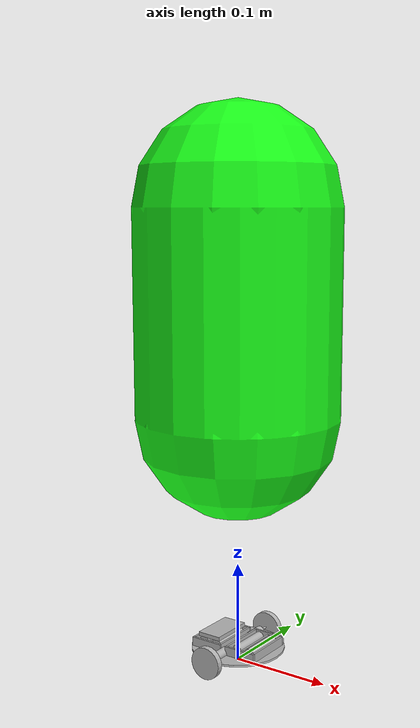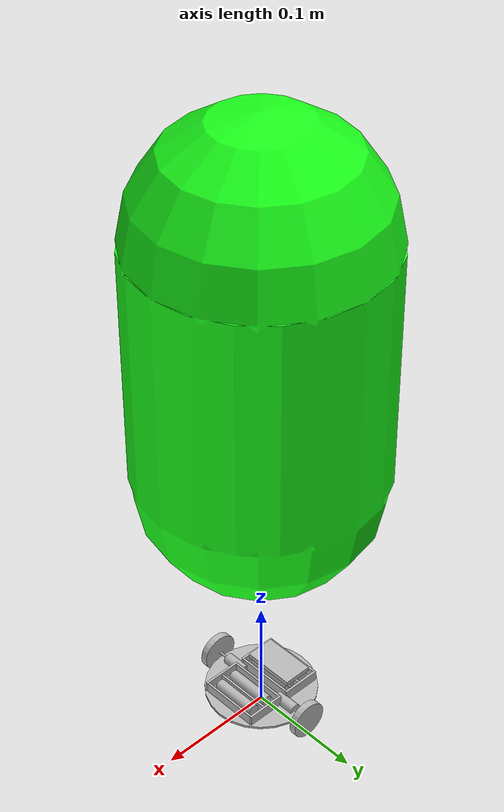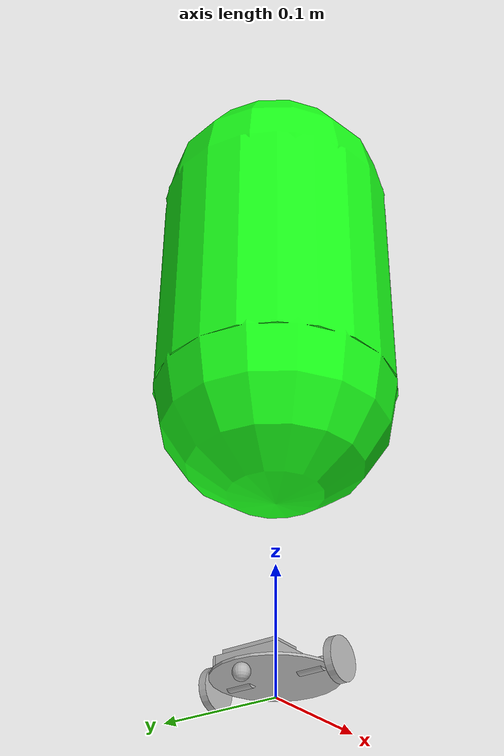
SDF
<?xml version="1.0"?>
<sdf version="1.11">
	<model name="green_runner_robot">
		<static>0</static>
		<pose>0 0 0 0 0 0</pose>
		<!-- LINKS - LINKS - LINKS -->
		<link name="blade_link">
			<pose>0 0 0.013 0 0 0</pose>
			<inertial>
				<mass>0.005</mass>
				<pose>0 0 0.001 0 0 0</pose>
				<inertia>
					<ixx>2.92e-06</ixx>
					<ixy>0</ixy>
					<ixz>0</ixz>
					<iyy>2.92e-06</iyy>
					<iyz>0</iyz>
					<izz>5.52e-06</izz>
				</inertia>
			</inertial>
			<self_collide>0</self_collide>
			<enable_wind>0</enable_wind>
			<kinematic>0</kinematic>
			<gravity>1</gravity>
			<visual name="body_visual">
				<pose>0 0 0.001 0 0 0</pose>
				<geometry>
					<cylinder>
						<radius>0.047</radius>
						<length>0.002</length>
					</cylinder>
				</geometry>
				<transparency>0</transparency>
				<cast_shadows>1</cast_shadows>
			</visual>
		</link>
		<link name="battery_b_lr_link">
			<pose>-0.0275 0.02 0.02 1.570796 0 0</pose>
			<inertial>
				<mass>0.00756</mass>
				<pose>0 0 0.02 0 0 0</pose>
				<inertia>
					<ixx>1.06e-06</ixx>
					<ixy>0</ixy>
					<ixz>0</ixz>
					<iyy>1.06e-06</iyy>
					<iyz>0</iyz>
					<izz>9.5e-08</izz>
				</inertia>
			</inertial>
			<self_collide>0</self_collide>
			<enable_wind>0</enable_wind>
			<kinematic>0</kinematic>
			<gravity>1</gravity>
			<visual name="body_visual">
				<pose>0 0 0.02 0 0 0</pose>
				<geometry>
					<cylinder>
						<radius>0.005</radius>
						<length>0.04</length>
					</cylinder>
				</geometry>
				<transparency>0</transparency>
				<cast_shadows>1</cast_shadows>
			</visual>
			<visual name="head_visual">
				<pose>0 0 0.041 0 0 0</pose>
				<geometry>
					<cylinder>
						<radius>0.001</radius>
						<length>0.002</length>
					</cylinder>
				</geometry>
				<transparency>0</transparency>
				<cast_shadows>1</cast_shadows>
			</visual>
		</link>
		<link name="battery_b_rl_link">
			<pose>-0.0125 -0.02 0.02 -1.570796 0 0</pose>
			<inertial>
				<mass>0.00756</mass>
				<pose>0 0 0.02 0 0 0</pose>
				<inertia>
					<ixx>1.06e-06</ixx>
					<ixy>0</ixy>
					<ixz>0</ixz>
					<iyy>1.06e-06</iyy>
					<iyz>0</iyz>
					<izz>9.5e-08</izz>
				</inertia>
			</inertial>
			<self_collide>0</self_collide>
			<enable_wind>0</enable_wind>
			<kinematic>0</kinematic>
			<gravity>1</gravity>
			<visual name="body_visual">
				<pose>0 0 0.02 0 0 0</pose>
				<geometry>
					<cylinder>
						<radius>0.005</radius>
						<length>0.04</length>
					</cylinder>
				</geometry>
				<transparency>0</transparency>
				<cast_shadows>1</cast_shadows>
			</visual>
			<visual name="head_visual">
				<pose>0 0 0.041 0 0 0</pose>
				<geometry>
					<cylinder>
						<radius>0.001</radius>
						<length>0.002</length>
					</cylinder>
				</geometry>
				<transparency>0</transparency>
				<cast_shadows>1</cast_shadows>
			</visual>
		</link>
		<link name="box_b_link">
			<pose>-0.02 0 0.014 0 0 1.570796</pose>
			<inertial>
				<mass>0.00101</mass>
				<pose>0 0 0.005 0 0 0</pose>
				<inertia>
					<ixx>1.06e-07</ixx>
					<ixy>0</ixy>
					<ixz>0</ixz>
					<iyy>2.19e-07</iyy>
					<iyz>0</iyz>
					<izz>3.08e-07</izz>
				</inertia>
			</inertial>
			<self_collide>0</self_collide>
			<enable_wind>0</enable_wind>
			<kinematic>0</kinematic>
			<gravity>1</gravity>
			<visual name="front_visual">
				<pose>0 0.016 0.005 0 0 0</pose>
				<geometry>
					<box>
						<size>0.05 0.002 0.01</size>
					</box>
				</geometry>
				<transparency>0</transparency>
				<cast_shadows>1</cast_shadows>
			</visual>
			<visual name="back_visual">
				<pose>0 -0.016 0.005 0 0 0</pose>
				<geometry>
					<box>
						<size>0.05 0.002 0.01</size>
					</box>
				</geometry>
				<transparency>0</transparency>
				<cast_shadows>1</cast_shadows>
			</visual>
			<visual name="bottom_visual">
				<pose>0 0 0.001 0 0 0</pose>
				<geometry>
					<box>
						<size>0.05 0.03 0.002</size>
					</box>
				</geometry>
				<transparency>0</transparency>
				<cast_shadows>1</cast_shadows>
			</visual>
			<visual name="left_visual">
				<pose>-0.026 0 0.005 0 0 0</pose>
				<geometry>
					<box>
						<size>0.002 0.034 0.01</size>
					</box>
				</geometry>
				<transparency>0</transparency>
				<cast_shadows>1</cast_shadows>
			</visual>
			<visual name="middle_visual">
				<pose>0 0 0.005 0 0 0</pose>
				<geometry>
					<box>
						<size>0.05 0.002 0.006</size>
					</box>
				</geometry>
				<transparency>0</transparency>
				<cast_shadows>1</cast_shadows>
			</visual>
			<visual name="right_visual">
				<pose>0.026 0 0.005 0 0 0</pose>
				<geometry>
					<box>
						<size>0.002 0.034 0.01</size>
					</box>
				</geometry>
				<transparency>0</transparency>
				<cast_shadows>1</cast_shadows>
			</visual>
		</link>
		<link name="battery_f_lr_link">
			<pose>0.0275 0.02 0.02 1.570796 0 0</pose>
			<inertial>
				<mass>0.00756</mass>
				<pose>0 0 0.02 0 0 0</pose>
				<inertia>
					<ixx>1.06e-06</ixx>
					<ixy>0</ixy>
					<ixz>0</ixz>
					<iyy>1.06e-06</iyy>
					<iyz>0</iyz>
					<izz>9.5e-08</izz>
				</inertia>
			</inertial>
			<self_collide>0</self_collide>
			<enable_wind>0</enable_wind>
			<kinematic>0</kinematic>
			<gravity>1</gravity>
			<visual name="body_visual">
				<pose>0 0 0.02 0 0 0</pose>
				<geometry>
					<cylinder>
						<radius>0.005</radius>
						<length>0.04</length>
					</cylinder>
				</geometry>
				<transparency>0</transparency>
				<cast_shadows>1</cast_shadows>
			</visual>
			<visual name="head_visual">
				<pose>0 0 0.041 0 0 0</pose>
				<geometry>
					<cylinder>
						<radius>0.001</radius>
						<length>0.002</length>
					</cylinder>
				</geometry>
				<transparency>0</transparency>
				<cast_shadows>1</cast_shadows>
			</visual>
		</link>
		<link name="battery_f_rl_link">
			<pose>0.0125 -0.02 0.02 -1.570796 0 0</pose>
			<inertial>
				<mass>0.00756</mass>
				<pose>0 0 0.02 0 0 0</pose>
				<inertia>
					<ixx>1.06e-06</ixx>
					<ixy>0</ixy>
					<ixz>0</ixz>
					<iyy>1.06e-06</iyy>
					<iyz>0</iyz>
					<izz>9.5e-08</izz>
				</inertia>
			</inertial>
			<self_collide>0</self_collide>
			<enable_wind>0</enable_wind>
			<kinematic>0</kinematic>
			<gravity>1</gravity>
			<visual name="body_visual">
				<pose>0 0 0.02 0 0 0</pose>
				<geometry>
					<cylinder>
						<radius>0.005</radius>
						<length>0.04</length>
					</cylinder>
				</geometry>
				<transparency>0</transparency>
				<cast_shadows>1</cast_shadows>
			</visual>
			<visual name="head_visual">
				<pose>0 0 0.041 0 0 0</pose>
				<geometry>
					<cylinder>
						<radius>0.001</radius>
						<length>0.002</length>
					</cylinder>
				</geometry>
				<transparency>0</transparency>
				<cast_shadows>1</cast_shadows>
			</visual>
		</link>
		<link name="box_f_link">
			<pose>0.02 0 0.014 0 0 -1.570796</pose>
			<inertial>
				<mass>0.00101</mass>
				<pose>0 0 0.005 0 0 0</pose>
				<inertia>
					<ixx>1.06e-07</ixx>
					<ixy>0</ixy>
					<ixz>0</ixz>
					<iyy>2.19e-07</iyy>
					<iyz>0</iyz>
					<izz>3.08e-07</izz>
				</inertia>
			</inertial>
			<self_collide>0</self_collide>
			<enable_wind>0</enable_wind>
			<kinematic>0</kinematic>
			<gravity>1</gravity>
			<visual name="right_visual">
				<pose>0.026 0 0.005 0 0 0</pose>
				<geometry>
					<box>
						<size>0.002 0.034 0.01</size>
					</box>
				</geometry>
				<transparency>0</transparency>
				<cast_shadows>1</cast_shadows>
			</visual>
			<visual name="front_visual">
				<pose>0 0.016 0.005 0 0 0</pose>
				<geometry>
					<box>
						<size>0.05 0.002 0.01</size>
					</box>
				</geometry>
				<transparency>0</transparency>
				<cast_shadows>1</cast_shadows>
			</visual>
			<visual name="bottom_visual">
				<pose>0 0 0.001 0 0 0</pose>
				<geometry>
					<box>
						<size>0.05 0.03 0.002</size>
					</box>
				</geometry>
				<transparency>0</transparency>
				<cast_shadows>1</cast_shadows>
			</visual>
			<visual name="middle_visual">
				<pose>0 0 0.005 0 0 0</pose>
				<geometry>
					<box>
						<size>0.05 0.002 0.006</size>
					</box>
				</geometry>
				<transparency>0</transparency>
				<cast_shadows>1</cast_shadows>
			</visual>
			<visual name="left_visual">
				<pose>-0.026 0 0.005 0 0 0</pose>
				<geometry>
					<box>
						<size>0.002 0.034 0.01</size>
					</box>
				</geometry>
				<transparency>0</transparency>
				<cast_shadows>1</cast_shadows>
			</visual>
			<visual name="back_visual">
				<pose>0 -0.016 0.005 0 0 0</pose>
				<geometry>
					<box>
						<size>0.05 0.002 0.01</size>
					</box>
				</geometry>
				<transparency>0</transparency>
				<cast_shadows>1</cast_shadows>
			</visual>
		</link>
		<link name="caster_link">
			<pose>-0.04 0 0 0 0 0</pose>
			<inertial>
				<mass>0.00144</mass>
				<pose>0 0 0.0065 0 0 0</pose>
				<inertia>
					<ixx>2.4e-08</ixx>
					<ixy>0</ixy>
					<ixz>0</ixz>
					<iyy>2.4e-08</iyy>
					<iyz>0</iyz>
					<izz>2.4e-08</izz>
				</inertia>
			</inertial>
			<self_collide>0</self_collide>
			<enable_wind>0</enable_wind>
			<kinematic>0</kinematic>
			<gravity>1</gravity>
			<visual name="body_visual">
				<pose>0 0 0.0065 0 0 0</pose>
				<geometry>
					<sphere>
						<radius>0.0065</radius>
					</sphere>
				</geometry>
				<transparency>0</transparency>
				<cast_shadows>1</cast_shadows>
			</visual>
			<collision name="body_collision">
				<laser_retro>0</laser_retro>
				<max_contacts>10</max_contacts>
				<pose>0 0 0.0065 0 0 0</pose>
				<geometry>
					<sphere>
						<radius>0.0065</radius>
					</sphere>
				</geometry>
				<surface>
					<friction>
						<ode>
							<mu>1</mu>
							<mu2>0.5</mu2>
							<fdir1>0 0 0</fdir1>
							<slip1>0</slip1>
							<slip2>0</slip2>
						</ode>
						<torsional>
							<coefficient>0.75</coefficient>
							<use_patch_radius>0</use_patch_radius>
							<surface_radius>0.0065</surface_radius>
							<ode>
								<slip>0</slip>
							</ode>
						</torsional>
					</friction>
					<contact>
						<ode>
							<soft_cfm>0</soft_cfm>
							<soft_erp>0.2</soft_erp>
							<kp>1e+13</kp>
							<kd>1</kd>
							<max_vel>1</max_vel>
							<min_depth>0.001</min_depth>
						</ode>
					</contact>
				</surface>
			</collision>
		</link>
		<link name="wheel_l_link">
			<pose>0 -0.05 0.016 1.570796 0 0</pose>
			<inertial>
				<mass>0.00311</mass>
				<pose>0 0 0.003 0 0 0</pose>
				<inertia>
					<ixx>2.08e-07</ixx>
					<ixy>0</ixy>
					<ixz>0</ixz>
					<iyy>2.08e-07</iyy>
					<iyz>0</iyz>
					<izz>3.98e-07</izz>
				</inertia>
			</inertial>
			<self_collide>0</self_collide>
			<enable_wind>0</enable_wind>
			<kinematic>0</kinematic>
			<gravity>1</gravity>
			<visual name="body_visual">
				<pose>0 0 0.003 0 0 0</pose>
				<geometry>
					<cylinder>
						<radius>0.016</radius>
						<length>0.006</length>
					</cylinder>
				</geometry>
				<transparency>0</transparency>
				<cast_shadows>1</cast_shadows>
			</visual>
			<collision name="body_collision">
				<laser_retro>0</laser_retro>
				<max_contacts>10</max_contacts>
				<pose>0 0 0.003 0 0 0</pose>
				<geometry>
					<cylinder>
						<radius>0.016</radius>
						<length>0.006</length>
					</cylinder>
				</geometry>
				<surface>
					<friction>
						<ode>
							<mu>20000000</mu>
							<mu2>10000000</mu2>
							<slip1>0</slip1>
							<slip2>0</slip2>
						</ode>
						<torsional>
							<coefficient>15</coefficient>
							<use_patch_radius>0</use_patch_radius>
							<surface_radius>0.016</surface_radius>
							<ode>
								<slip>0</slip>
							</ode>
						</torsional>
					</friction>
					<contact>
						<ode>
							<soft_cfm>0</soft_cfm>
							<soft_erp>0.2</soft_erp>
							<kp>1e+13</kp>
							<kd>1</kd>
							<max_vel>1</max_vel>
							<min_depth>0.001</min_depth>
						</ode>
					</contact>
				</surface>
			</collision>
		</link>
		<link name="motor_l_link">
			<pose>0 -0.02 0.016 1.570796 0 0</pose>
			<inertial>
				<mass>0.03158</mass>
				<pose>0 0 0.01 0 0 0</pose>
				<inertia>
					<ixx>1.25e-06</ixx>
					<ixy>0</ixy>
					<ixz>0</ixz>
					<iyy>1.25e-06</iyy>
					<iyz>0</iyz>
					<izz>3.95e-07</izz>
				</inertia>
			</inertial>
			<self_collide>0</self_collide>
			<enable_wind>0</enable_wind>
			<kinematic>0</kinematic>
			<gravity>1</gravity>
			<visual name="body_visual">
				<pose>0 0 0.01 0 0 0</pose>
				<geometry>
					<cylinder>
						<radius>0.005</radius>
						<length>0.02</length>
					</cylinder>
				</geometry>
				<transparency>0</transparency>
				<cast_shadows>1</cast_shadows>
			</visual>
			<visual name="axis_visual">
				<pose>0 0 0.025 0 0 0</pose>
				<geometry>
					<cylinder>
						<radius>0.001</radius>
						<length>0.01</length>
					</cylinder>
				</geometry>
				<transparency>0</transparency>
				<cast_shadows>1</cast_shadows>
			</visual>
		</link>
		<link name="wheel_r_link">
			<pose>0 0.05 0.016 -1.570796 0 0</pose>
			<inertial>
				<mass>0.00311</mass>
				<pose>0 0 0.003 0 0 0</pose>
				<inertia>
					<ixx>2.08e-07</ixx>
					<ixy>0</ixy>
					<ixz>0</ixz>
					<iyy>2.08e-07</iyy>
					<iyz>0</iyz>
					<izz>3.98e-07</izz>
				</inertia>
			</inertial>
			<self_collide>0</self_collide>
			<enable_wind>0</enable_wind>
			<kinematic>0</kinematic>
			<gravity>1</gravity>
			<visual name="body_visual">
				<pose>0 0 0.003 0 0 0</pose>
				<geometry>
					<cylinder>
						<radius>0.016</radius>
						<length>0.006</length>
					</cylinder>
				</geometry>
				<transparency>0</transparency>
				<cast_shadows>1</cast_shadows>
			</visual>
			<collision name="body_collision">
				<laser_retro>0</laser_retro>
				<max_contacts>10</max_contacts>
				<pose>0 0 0.003 0 0 0</pose>
				<geometry>
					<cylinder>
						<radius>0.016</radius>
						<length>0.006</length>
					</cylinder>
				</geometry>
				<surface>
					<friction>
						<ode>
							<mu>2000000</mu>
							<mu2>1000000</mu2>
							<slip1>0</slip1>
							<slip2>0</slip2>
						</ode>
						<torsional>
							<coefficient>15</coefficient>
							<use_patch_radius>0</use_patch_radius>
							<surface_radius>0.016</surface_radius>
							<ode>
								<slip>0</slip>
							</ode>
						</torsional>
					</friction>
					<contact>
						<ode>
							<soft_cfm>0</soft_cfm>
							<soft_erp>0.2</soft_erp>
							<kp>1e+13</kp>
							<kd>1</kd>
							<max_vel>1</max_vel>
							<min_depth>0.001</min_depth>
						</ode>
					</contact>
				</surface>
			</collision>
		</link>
		<link name="motor_r_link">
			<pose>0 0.02 0.016 -1.570796 0 0</pose>
			<inertial>
				<mass>0.03158</mass>
				<pose>0 0 0.01 0 0 0</pose>
				<inertia>
					<ixx>1.25e-06</ixx>
					<ixy>0</ixy>
					<ixz>0</ixz>
					<iyy>1.25e-06</iyy>
					<iyz>0</iyz>
					<izz>3.95e-07</izz>
				</inertia>
			</inertial>
			<self_collide>0</self_collide>
			<enable_wind>0</enable_wind>
			<kinematic>0</kinematic>
			<gravity>1</gravity>
			<visual name="body_visual">
				<pose>0 0 0.01 0 0 0</pose>
				<geometry>
					<cylinder>
						<radius>0.005</radius>
						<length>0.02</length>
					</cylinder>
				</geometry>
				<transparency>0</transparency>
				<cast_shadows>1</cast_shadows>
			</visual>
			<visual name="axis_visual">
				<pose>0 0 0.025 0 0 0</pose>
				<geometry>
					<cylinder>
						<radius>0.001</radius>
						<length>0.01</length>
					</cylinder>
				</geometry>
				<transparency>0</transparency>
				<cast_shadows>1</cast_shadows>
			</visual>
		</link>
		<link name="display_link">
			<pose>-0.02 0 0.025 0 0 1.570796</pose>
			<inertial>
				<mass>0.01164</mass>
				<pose>0 0 0.002 0 0 0</pose>
				<inertia>
					<ixx>6.22e-07</ixx>
					<ixy>0</ixy>
					<ixz>0</ixz>
					<iyy>1.98e-06</iyy>
					<iyz>0</iyz>
					<izz>2.57e-06</izz>
				</inertia>
			</inertial>
			<self_collide>0</self_collide>
			<enable_wind>0</enable_wind>
			<kinematic>0</kinematic>
			<gravity>1</gravity>
			<visual name="body_visual">
				<pose>0 0 0.002 0 0 0</pose>
				<geometry>
					<box>
						<size>0.045 0.025 0.004</size>
					</box>
				</geometry>
				<transparency>0</transparency>
				<cast_shadows>1</cast_shadows>
			</visual>
		</link>
		<link name="visual_object_link">
			<pose>0 0 0.35 0 0 0</pose>
			<kinematic>true</kinematic>
			<inertial>
				<mass>1e-12</mass>
				<inertia>
					<ixx>0</ixx>
					<ixy>0</ixy>
					<ixz>0</ixz>
					<iyy>0</iyy>
					<iyz>0</iyz>
					<izz>0</izz>
				</inertia>
			</inertial>
			<visual name="green_capsule">
				<pose>0 0 0 0 0 0</pose>
				<geometry>
					<capsule>
						<radius>0.1</radius>
						<length>0.2</length>
					</capsule>
				</geometry>
				<material>
					<ambient>0.1 1.0 0.1 1</ambient>
					<diffuse>0.1 1.0 0.1 1</diffuse>
				</material>
			</visual>
		</link>

		<!-- JOINTS - JOINTS - JOINTS -->
		<joint name="battery_b_lr_joint" type="fixed">
			<parent>box_b_link</parent>
			<child>battery_b_lr_link</child>
			<pose>0 0 0 0 0 0</pose>
			<physics>
				<ode>
					<limit>
						<cfm>0</cfm>
						<erp>0.2</erp>
					</limit>
					<suspension>
						<cfm>0</cfm>
						<erp>0.2</erp>
					</suspension>
				</ode>
			</physics>
		</joint>
		<joint name="battery_b_rl_joint" type="fixed">
			<parent>box_b_link</parent>
			<child>battery_b_rl_link</child>
			<pose>0 0 0 0 0 0</pose>
			<physics>
				<ode>
					<limit>
						<cfm>0</cfm>
						<erp>0.2</erp>
					</limit>
					<suspension>
						<cfm>0</cfm>
						<erp>0.2</erp>
					</suspension>
				</ode>
			</physics>
		</joint>
		<joint name="battery_f_lr_joint" type="fixed">
			<parent>box_f_link</parent>
			<child>battery_f_lr_link</child>
			<pose>0 0 0 0 0 0</pose>
			<physics>
				<ode>
					<limit>
						<cfm>0</cfm>
						<erp>0.2</erp>
					</limit>
					<suspension>
						<cfm>0</cfm>
						<erp>0.2</erp>
					</suspension>
				</ode>
			</physics>
		</joint>
		<joint name="box_b_joint" type="fixed">
			<parent>blade_link</parent>
			<child>box_b_link</child>
			<pose>0 0 0 0 0 0</pose>
			<physics>
				<ode>
					<limit>
						<cfm>0</cfm>
						<erp>0.2</erp>
					</limit>
					<suspension>
						<cfm>0</cfm>
						<erp>0.2</erp>
					</suspension>
				</ode>
			</physics>
		</joint>
		<joint name="battery_f_rl_joint" type="fixed">
			<parent>box_f_link</parent>
			<child>battery_f_rl_link</child>
			<pose>0 0 0 0 0 0</pose>
			<physics>
				<ode>
					<limit>
						<cfm>0</cfm>
						<erp>0.2</erp>
					</limit>
					<suspension>
						<cfm>0</cfm>
						<erp>0.2</erp>
					</suspension>
				</ode>
			</physics>
		</joint>
		<joint name="box_f_joint" type="fixed">
			<parent>blade_link</parent>
			<child>box_f_link</child>
			<pose>0 0 0 0 0 0</pose>
			<physics>
				<ode>
					<limit>
						<cfm>0</cfm>
						<erp>0.2</erp>
					</limit>
					<suspension>
						<cfm>0</cfm>
						<erp>0.2</erp>
					</suspension>
				</ode>
			</physics>
		</joint>
		<joint name="caster_joint" type="ball">
			<parent>blade_link</parent>
			<child>caster_link</child>
			<pose>0 0 0.0065 0 0 0</pose>
			<physics>
				<ode>
					<limit>
						<cfm>0</cfm>
						<erp>0.2</erp>
					</limit>
					<suspension>
						<cfm>0</cfm>
						<erp>0.2</erp>
					</suspension>
				</ode>
			</physics>
		</joint>
		<joint name="left_axis_joint" type="revolute">
			<parent>blade_link</parent>
			<child>wheel_l_link</child>
			<pose>0 0 0 0 0 0</pose>
			<axis>
				<xyz>0 0 -1</xyz>
			</axis>
			<physics>
				<ode>
					<cfm>0</cfm>
					<erp>0.2</erp>
					<limit>
						<cfm>0</cfm>
						<erp>0.2</erp>
					</limit>
					<suspension>
						<cfm>0</cfm>
						<erp>0.2</erp>
					</suspension>
				</ode>
			</physics>
		</joint>
		<joint name="motor_l_joint" type="fixed">
			<parent>blade_link</parent>
			<child>motor_l_link</child>
			<pose>0 0 0 0 0 0</pose>
		</joint>
		<joint name="right_axis_joint" type="revolute">
			<parent>blade_link</parent>
			<child>wheel_r_link</child>
			<pose>0 0 0 0 0 0</pose>
			<axis>
				<xyz>0 0 1</xyz>
			</axis>
			<physics>
				<ode>
					<cfm>0</cfm>
					<erp>0.2</erp>
					<limit>
						<cfm>0</cfm>
						<erp>0.2</erp>
					</limit>
					<suspension>
						<cfm>0</cfm>
						<erp>0.2</erp>
					</suspension>
				</ode>
			</physics>
		</joint>
		<joint name="motor_r_joint" type="fixed">
			<parent>blade_link</parent>
			<child>motor_r_link</child>
			<pose>0 0 0 0 0 0</pose>
		</joint>
		<joint name="display_joint" type="fixed">
			<parent>box_b_link</parent>
			<child>display_link</child>
			<pose>0 0 0 0 0 0</pose>
		</joint>
		<joint name="visual_object_joint" type="fixed">
			<parent>box_f_link</parent>
			<child>visual_object_link</child>
			<pose>0 0 0 0 0 0</pose>
		</joint>

		<!-- PLUGINS - PLUGINS - PLUGINS -->
		<plugin filename="gz-sim-diff-drive-system" name="gz::sim::systems::DiffDrive">
			<topic>/green_runner_robot/motor</topic>
			<left_joint>left_axis_joint</left_joint>
			<right_joint>right_axis_joint</right_joint>
			<wheel_separation>0.1</wheel_separation>
			<wheel_radius>0.016</wheel_radius>
			<min_velocity>-1.0</min_velocity>
			<max_velocity>+1.0</max_velocity>
			<min_acceleration>-100000000.5</min_acceleration>
			<max_acceleration>+100000000.5</max_acceleration>
			<min_jerk>-100000000000.0</min_jerk>
			<max_jerk>+100000000000.0</max_jerk>
			<odom_topic>/vehicle/odo</odom_topic>
			<odom_publish_frequency>5</odom_publish_frequency>
		</plugin>
	</model>
</sdf>
